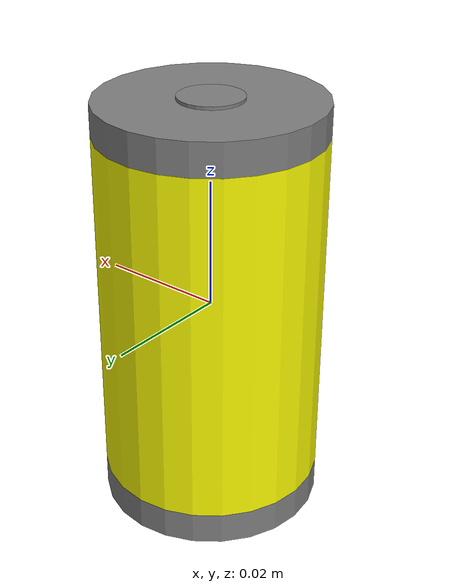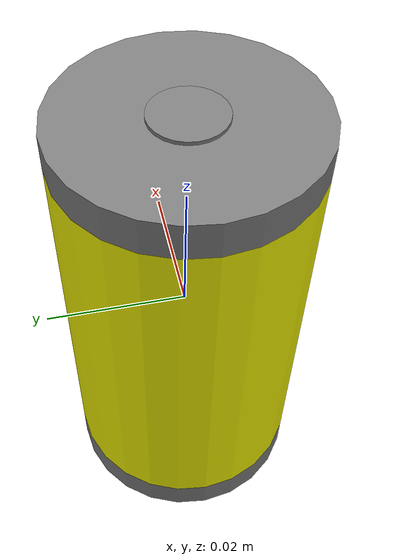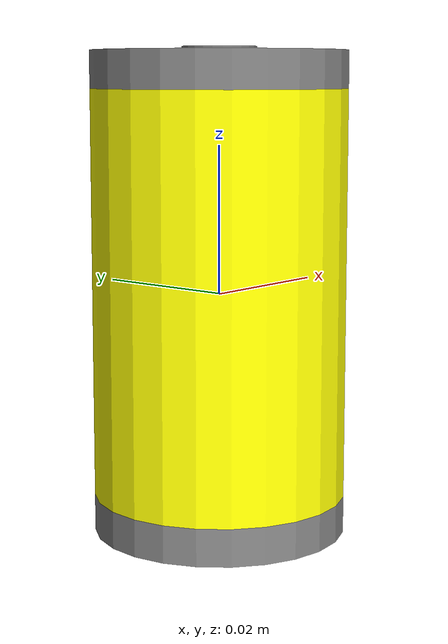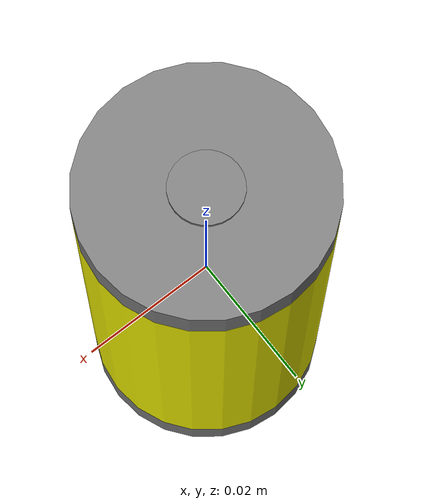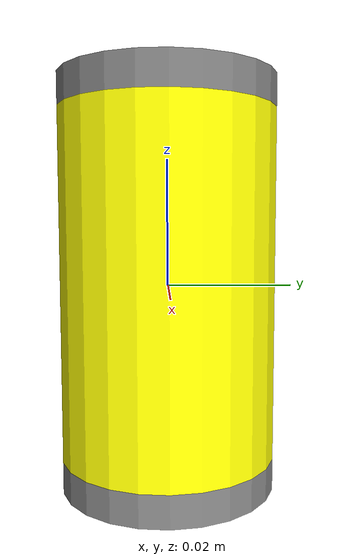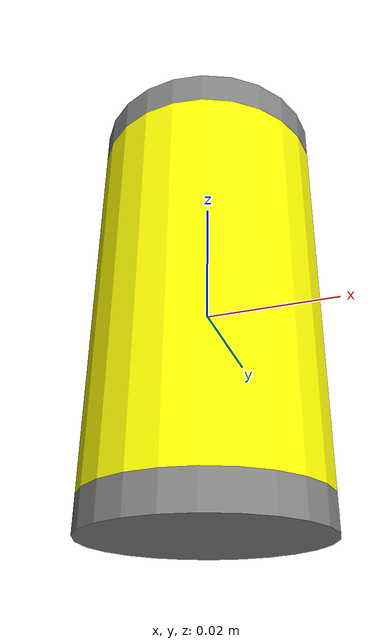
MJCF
<mujoco model="battery_D">
    <worldbody>
        <body name="battery_D" pos="0 0 0">
            <!-- Main green body -->
            <geom name="battery_body" type="cylinder" pos="0 0 0" size="0.0171 0.0275" rgba="1 1 0 1" mass="0.15" friction="1 0.005 0.0001" condim="4"/>

            <!-- Bottom grey cap -->
            <geom name="battery_bottom_cap" type="cylinder" pos="0 0 -0.030" size="0.0171 0.0025" rgba="0.5 0.5 0.5 1" mass="0.02" friction="1 0.005 0.0001" condim="4"/>

            <!-- Top grey cap -->
            <geom name="battery_top_cap" type="cylinder" pos="0 0 0.030" size="0.0171 0.0025" rgba="0.5 0.5 0.5 1" mass="0.02" friction="1 0.005 0.0001" condim="4"/>

            <!-- Positive bump on top -->
            <geom name="battery_positive_bump" type="cylinder" pos="0 0 0.0315" size="0.005 0.0015" rgba="0.5 0.5 0.5 1" mass="0.001" friction="1 0.005 0.0001" condim="4"/>

        </body>
    </worldbody>
</mujoco>
